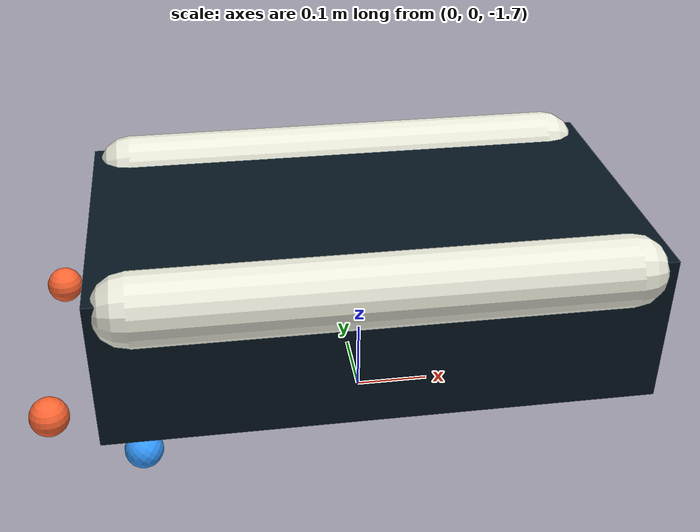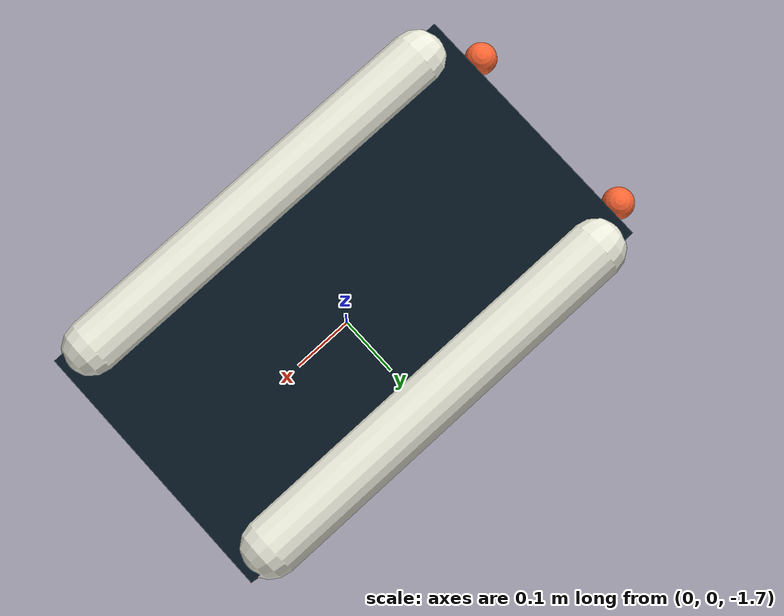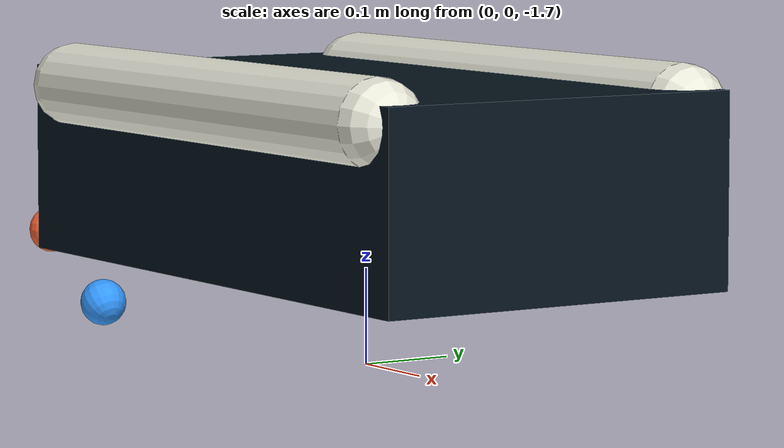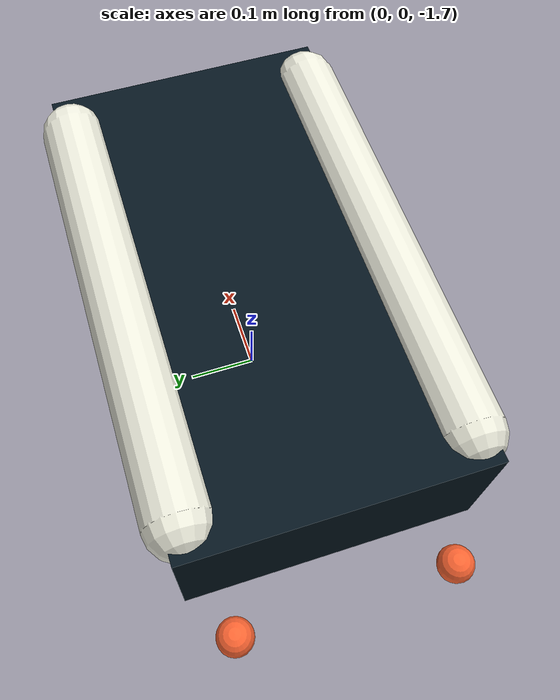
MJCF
<mujoco model="warpauv_6thruster">
  <compiler angle="degree" coordinate="local"/>
  <!-- Three 1/180 s physics substeps are applied per 60 Hz action. -->
  <option timestep="0.005555555555555556" gravity="0 0 -9.81"/>

  <worldbody>
    <light name="top" pos="0 0 2"/>
    <geom name="water_plane" type="plane" size="6 6 0.01" pos="0 0 0" rgba="0.05 0.15 0.20 0.25"/>
    <body name="trajectory_target_marker" mocap="true" pos="0 0 -1.5">
      <geom name="trajectory_target_marker_geom" type="sphere" size="0.055" rgba="0.10 0.42 1.00 0.85" contype="0" conaffinity="0"/>
    </body>
    <body name="trajectory_actual_marker" mocap="true" pos="0 0 -1.5">
      <geom name="trajectory_actual_marker_geom" type="sphere" size="0.045" rgba="1.00 0.55 0.15 0.85" contype="0" conaffinity="0"/>
    </body>
    <!-- ROS-driven mocap dots: blue target trail, orange actual trail. -->
    <body name="trajectory_target_trail_00" mocap="true" pos="0 0 -1.5"><geom type="sphere" size="0.018" rgba="0.10 0.42 1.00 0.30" contype="0" conaffinity="0"/></body>
    <body name="trajectory_target_trail_01" mocap="true" pos="0 0 -1.5"><geom type="sphere" size="0.018" rgba="0.10 0.42 1.00 0.30" contype="0" conaffinity="0"/></body>
    <body name="trajectory_target_trail_02" mocap="true" pos="0 0 -1.5"><geom type="sphere" size="0.018" rgba="0.10 0.42 1.00 0.30" contype="0" conaffinity="0"/></body>
    <body name="trajectory_target_trail_03" mocap="true" pos="0 0 -1.5"><geom type="sphere" size="0.018" rgba="0.10 0.42 1.00 0.30" contype="0" conaffinity="0"/></body>
    <body name="trajectory_target_trail_04" mocap="true" pos="0 0 -1.5"><geom type="sphere" size="0.018" rgba="0.10 0.42 1.00 0.30" contype="0" conaffinity="0"/></body>
    <body name="trajectory_target_trail_05" mocap="true" pos="0 0 -1.5"><geom type="sphere" size="0.018" rgba="0.10 0.42 1.00 0.30" contype="0" conaffinity="0"/></body>
    <body name="trajectory_target_trail_06" mocap="true" pos="0 0 -1.5"><geom type="sphere" size="0.018" rgba="0.10 0.42 1.00 0.30" contype="0" conaffinity="0"/></body>
    <body name="trajectory_target_trail_07" mocap="true" pos="0 0 -1.5"><geom type="sphere" size="0.018" rgba="0.10 0.42 1.00 0.30" contype="0" conaffinity="0"/></body>
    <body name="trajectory_target_trail_08" mocap="true" pos="0 0 -1.5"><geom type="sphere" size="0.018" rgba="0.10 0.42 1.00 0.30" contype="0" conaffinity="0"/></body>
    <body name="trajectory_target_trail_09" mocap="true" pos="0 0 -1.5"><geom type="sphere" size="0.018" rgba="0.10 0.42 1.00 0.30" contype="0" conaffinity="0"/></body>
    <body name="trajectory_target_trail_10" mocap="true" pos="0 0 -1.5"><geom type="sphere" size="0.018" rgba="0.10 0.42 1.00 0.30" contype="0" conaffinity="0"/></body>
    <body name="trajectory_target_trail_11" mocap="true" pos="0 0 -1.5"><geom type="sphere" size="0.018" rgba="0.10 0.42 1.00 0.30" contype="0" conaffinity="0"/></body>
    <body name="trajectory_actual_trail_00" mocap="true" pos="0 0 -1.5"><geom type="sphere" size="0.018" rgba="1.00 0.55 0.15 0.30" contype="0" conaffinity="0"/></body>
    <body name="trajectory_actual_trail_01" mocap="true" pos="0 0 -1.5"><geom type="sphere" size="0.018" rgba="1.00 0.55 0.15 0.30" contype="0" conaffinity="0"/></body>
    <body name="trajectory_actual_trail_02" mocap="true" pos="0 0 -1.5"><geom type="sphere" size="0.018" rgba="1.00 0.55 0.15 0.30" contype="0" conaffinity="0"/></body>
    <body name="trajectory_actual_trail_03" mocap="true" pos="0 0 -1.5"><geom type="sphere" size="0.018" rgba="1.00 0.55 0.15 0.30" contype="0" conaffinity="0"/></body>
    <body name="trajectory_actual_trail_04" mocap="true" pos="0 0 -1.5"><geom type="sphere" size="0.018" rgba="1.00 0.55 0.15 0.30" contype="0" conaffinity="0"/></body>
    <body name="trajectory_actual_trail_05" mocap="true" pos="0 0 -1.5"><geom type="sphere" size="0.018" rgba="1.00 0.55 0.15 0.30" contype="0" conaffinity="0"/></body>
    <body name="trajectory_actual_trail_06" mocap="true" pos="0 0 -1.5"><geom type="sphere" size="0.018" rgba="1.00 0.55 0.15 0.30" contype="0" conaffinity="0"/></body>
    <body name="trajectory_actual_trail_07" mocap="true" pos="0 0 -1.5"><geom type="sphere" size="0.018" rgba="1.00 0.55 0.15 0.30" contype="0" conaffinity="0"/></body>
    <body name="trajectory_actual_trail_08" mocap="true" pos="0 0 -1.5"><geom type="sphere" size="0.018" rgba="1.00 0.55 0.15 0.30" contype="0" conaffinity="0"/></body>
    <body name="trajectory_actual_trail_09" mocap="true" pos="0 0 -1.5"><geom type="sphere" size="0.018" rgba="1.00 0.55 0.15 0.30" contype="0" conaffinity="0"/></body>
    <body name="trajectory_actual_trail_10" mocap="true" pos="0 0 -1.5"><geom type="sphere" size="0.018" rgba="1.00 0.55 0.15 0.30" contype="0" conaffinity="0"/></body>
    <body name="trajectory_actual_trail_11" mocap="true" pos="0 0 -1.5"><geom type="sphere" size="0.018" rgba="1.00 0.55 0.15 0.30" contype="0" conaffinity="0"/></body>
    <body name="base_link" pos="0 0 -1.5">
      <freejoint/>
      <!-- Mass comes from Isaac WarpAUVEnvCfg.mass. Inertia is a rectangular
           prism estimate recorded in the source environment comments. -->
      <inertial pos="0 0 0" mass="22.701" diaginertia="0.37 0.97 1.19"/>
      <geom name="hull" type="box" size="0.35 0.20 0.10" rgba="0.02 0.08 0.12 1"/>
      <geom name="float_left" type="capsule" fromto="-0.30 0.18 0.08 0.30 0.18 0.08" size="0.045" rgba="0.92 0.92 0.86 1"/>
      <geom name="float_right" type="capsule" fromto="-0.30 -0.18 0.08 0.30 -0.18 0.08" size="0.045" rgba="0.92 0.92 0.86 1"/>

      <!-- Thruster order follows isaac-auv-env/thruster_dynamics.py exactly. -->
      <site name="drive_left" pos="-0.4127 0.1506 -0.0889" euler="0 0 0" size="0.025" rgba="1 0.4 0.2 1"/>
      <site name="drive_right" pos="-0.4127 -0.1506 -0.0889" euler="0 0 0" size="0.025" rgba="1 0.4 0.2 1"/>
      <site name="rear_left" pos="-0.3030 0.1461 -0.1587" euler="0 -45 90" size="0.025" rgba="0.2 0.6 1 1"/>
      <site name="rear_right" pos="-0.3030 -0.1461 -0.1587" euler="0 -45 -90" size="0.025" rgba="0.2 0.6 1 1"/>
      <site name="front_left" pos="0.0585 0.1461 -0.0540" euler="0 45 90" size="0.025" rgba="0.2 0.6 1 1"/>
      <site name="front_right" pos="0.0585 -0.1461 -0.0540" euler="0 45 -90" size="0.025" rgba="0.2 0.6 1 1"/>
      <camera name="front_camera" pos="0.42 0 -0.02" euler="0 -10 0" fovy="70"/>
    </body>
  </worldbody>

  <actuator>
    <!-- Site motor gear applies force along each site's local x-axis, matching
         the Isaac force construction before the source quaternions rotate it. -->
    <motor name="drive_left" site="drive_left" gear="1 0 0 0 0 0" ctrlrange="-160 160"/>
    <motor name="drive_right" site="drive_right" gear="1 0 0 0 0 0" ctrlrange="-160 160"/>
    <motor name="rear_left" site="rear_left" gear="1 0 0 0 0 0" ctrlrange="-160 160"/>
    <motor name="rear_right" site="rear_right" gear="1 0 0 0 0 0" ctrlrange="-160 160"/>
    <motor name="front_left" site="front_left" gear="1 0 0 0 0 0" ctrlrange="-160 160"/>
    <motor name="front_right" site="front_right" gear="1 0 0 0 0 0" ctrlrange="-160 160"/>
  </actuator>
</mujoco>
